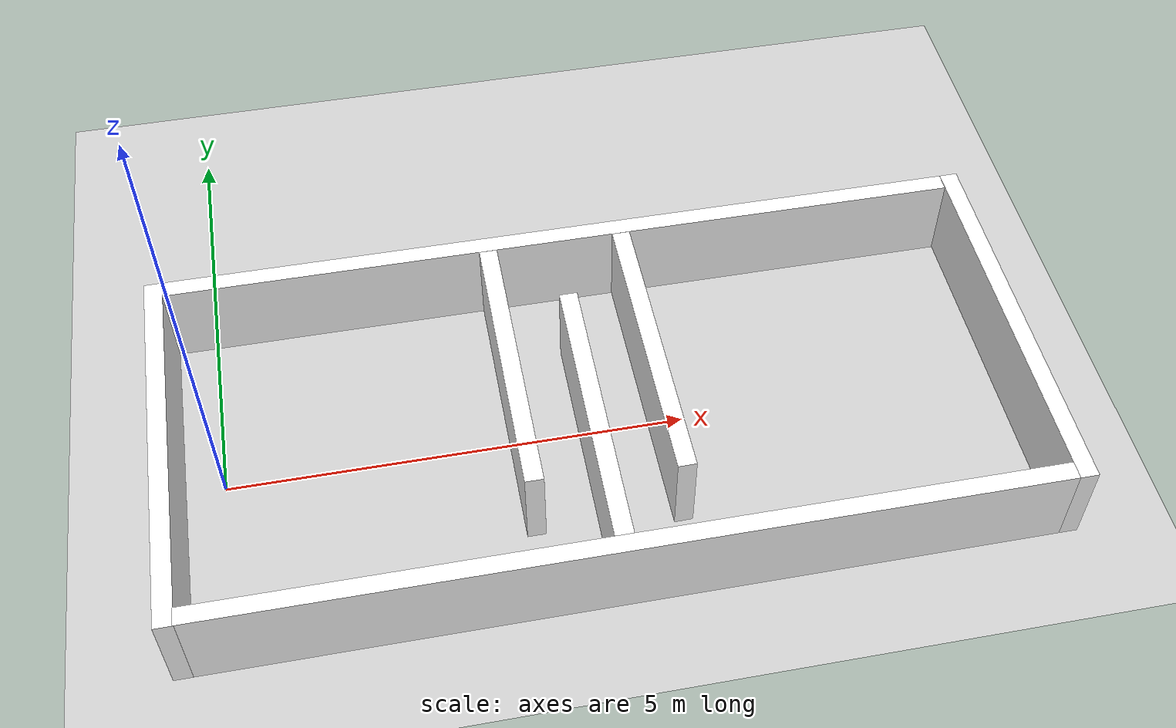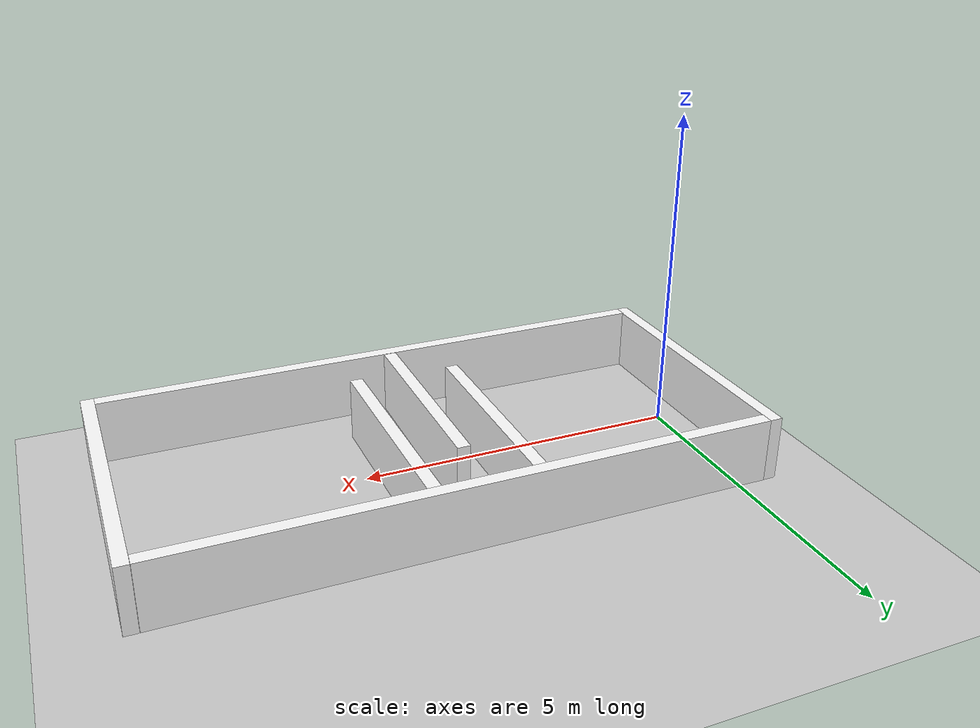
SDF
<sdf version="1.7">
 <world name="default">
  <scene><ambient>0.4 0.4 0.4 1</ambient><background>0.7 0.7 0.7 1</background><shadows>1</shadows></scene>
  <light name="sun" type="directional">
   <pose>0 0 10 0 -0 0</pose>
   <diffuse>0.8 0.8 0.8 1</diffuse>
   <specular>0.2 0.2 0.2 1</specular>
   <attenuation>
    <range>1000</range>
    <constant>0.9</constant>
    <linear>0.01</linear>
    <quadratic>0.001</quadratic>
   </attenuation>
   <direction>-0.5 0.1 -0.9</direction>
   <spot><inner_angle>0</inner_angle><outer_angle>0</outer_angle><falloff>0</falloff></spot>
  </light>
  <model name="ground_plane">
   <static>1</static>
   <link name="link">
    <collision name="collision">
     <geometry><plane><normal>0 0 1</normal><size>100 100</size></plane></geometry>
     <surface>
      <contact><collide_bitmask>65535</collide_bitmask></contact>
      <friction><ode><mu>100</mu><mu2>50</mu2></ode></friction>
     </surface>
    </collision>
    <visual name="visual">
     <cast_shadows>0</cast_shadows>
     <geometry><plane><normal>0 0 1</normal><size>100 100</size></plane></geometry>
     <material>
      <script><uri>file://media/materials/scripts/gazebo.material</uri><name>Gazebo/Grey</name></script>
     </material>
    </visual>
   </link>
  </model>
  <physics type="ode">
   <real_time_update_rate>1000</real_time_update_rate>
   <max_step_size>0.001</max_step_size>
   <real_time_factor>1</real_time_factor>
   <ode>
    <solver>
     <type>quick</type>
     <iters>150</iters>
     <precon_iters>0</precon_iters>
     <sor>1.4</sor>
     <use_dynamic_moi_rescaling>1</use_dynamic_moi_rescaling>
    </solver>
    <constraints>
     <cfm>1e-05</cfm>
     <erp>0.2</erp>
     <contact_max_correcting_vel>2000</contact_max_correcting_vel>
     <contact_surface_layer>0.01</contact_surface_layer>
    </constraints>
   </ode>
  </physics>
  <gravity>0 0 -9.8</gravity>
  <magnetic_field>6e-06 2.3e-05 -4.2e-05</magnetic_field>
  <atmosphere type="adiabatic"/>
  <spherical_coordinates>
   <surface_model>EARTH_WGS84</surface_model>
   <latitude_deg>0</latitude_deg>
   <longitude_deg>0</longitude_deg>
   <elevation>0</elevation>
   <heading_deg>0</heading_deg>
  </spherical_coordinates>
  <model name="brick_box_small_1">
   <link name="chassis">
    <pose>-0.5 0 1.5 0 -0 0</pose>
    <inertial>
     <mass>1</mass>
     <inertia><ixx>1</ixx><ixy>0</ixy><ixz>0</ixz><iyy>1</iyy><iyz>0</iyz><izz>1</izz></inertia>
    </inertial>
    <visual name="visual">
     <geometry>
      <mesh><uri>model://brick_box_3x1x3/meshes/simple_box.dae</uri><scale>9 0.2 1</scale></mesh>
     </geometry>
     <material>
      <script>
       <uri>model://brick_box_3x1x3/materials/scripts</uri>
       <uri>model://brick_box_3x1x3/materials/textures</uri>
       <name>BrickBox/Diffuse</name>
      </script>
      <shader type="pixel"><normal_map>__default__</normal_map></shader>
      <ambient>1 1 1 1</ambient>
      <diffuse>1 1 1 1</diffuse>
      <specular>0 0 0 1</specular>
      <emissive>0 0 0 1</emissive>
     </material>
    </visual>
    <collision name="collision">
     <geometry><box><size>9 0.2 1</size></box></geometry>
     <surface>
      <friction>
       <ode><mu>1</mu><mu2>1</mu2><fdir1>0 0 0</fdir1><slip1>0</slip1><slip2>0</slip2></ode>
       <torsional>
        <coefficient>1</coefficient>
        <patch_radius>0</patch_radius>
        <surface_radius>0</surface_radius>
        <use_patch_radius>1</use_patch_radius>
        <ode><slip>0</slip></ode>
       </torsional>
      </friction>
      <bounce><restitution_coefficient>0</restitution_coefficient><threshold>1e+06</threshold></bounce>
      <contact>
       <collide_without_contact>0</collide_without_contact>
       <collide_without_contact_bitmask>1</collide_without_contact_bitmask>
       <collide_bitmask>1</collide_bitmask>
       <ode>
        <soft_cfm>0</soft_cfm>
        <soft_erp>0.2</soft_erp>
        <kp>1e+13</kp>
        <kd>1</kd>
        <max_vel>0.01</max_vel>
        <min_depth>0</min_depth>
       </ode>
       <bullet>
        <split_impulse>1</split_impulse>
        <split_impulse_penetration_threshold>-0.01</split_impulse_penetration_threshold>
        <soft_cfm>0</soft_cfm>
        <soft_erp>0.2</soft_erp>
        <kp>1e+13</kp>
        <kd>1</kd>
       </bullet>
      </contact>
     </surface>
    </collision>
   </link>
   <static>1</static>
   <pose>4.56259 2.10449 -1.01189 0 -0 0</pose>
  </model>
  <model name="brick_box_small_2">
   <link name="chassis">
    <pose>-0.2 -0 1.5 0 -0 0</pose>
    <inertial>
     <mass>1</mass>
     <inertia><ixx>1</ixx><ixy>0</ixy><ixz>0</ixz><iyy>1</iyy><iyz>0</iyz><izz>1</izz></inertia>
    </inertial>
    <visual name="visual">
     <geometry>
      <mesh><uri>model://brick_box_3x1x3/meshes/simple_box.dae</uri><scale>4.4 0.2 1</scale></mesh>
     </geometry>
     <material>
      <script>
       <uri>model://brick_box_3x1x3/materials/scripts</uri>
       <uri>model://brick_box_3x1x3/materials/textures</uri>
       <name>BrickBox/Diffuse</name>
      </script>
      <shader type="pixel"><normal_map>__default__</normal_map></shader>
      <ambient>1 1 1 1</ambient>
      <diffuse>1 1 1 1</diffuse>
      <specular>0 0 0 1</specular>
      <emissive>0 0 0 1</emissive>
     </material>
    </visual>
    <collision name="collision">
     <geometry><box><size>4.4 0.2 1</size></box></geometry>
     <surface>
      <friction>
       <ode><mu>1</mu><mu2>1</mu2><fdir1>0 0 0</fdir1><slip1>0</slip1><slip2>0</slip2></ode>
       <torsional>
        <coefficient>1</coefficient>
        <patch_radius>0</patch_radius>
        <surface_radius>0</surface_radius>
        <use_patch_radius>1</use_patch_radius>
        <ode><slip>0</slip></ode>
       </torsional>
      </friction>
      <bounce><restitution_coefficient>0</restitution_coefficient><threshold>1e+06</threshold></bounce>
      <contact>
       <collide_without_contact>0</collide_without_contact>
       <collide_without_contact_bitmask>1</collide_without_contact_bitmask>
       <collide_bitmask>1</collide_bitmask>
       <ode>
        <soft_cfm>0</soft_cfm>
        <soft_erp>0.2</soft_erp>
        <kp>1e+13</kp>
        <kd>1</kd>
        <max_vel>0.01</max_vel>
        <min_depth>0</min_depth>
       </ode>
       <bullet>
        <split_impulse>1</split_impulse>
        <split_impulse_penetration_threshold>-0.01</split_impulse_penetration_threshold>
        <soft_cfm>0</soft_cfm>
        <soft_erp>0.2</soft_erp>
        <kp>1e+13</kp>
        <kd>1</kd>
       </bullet>
      </contact>
     </surface>
    </collision>
   </link>
   <static>1</static>
   <pose>-0.526831 0.202577 -1.01189 0 -0 1.57468</pose>
  </model>
  <model name="brick_box_small_1_0">
   <link name="chassis">
    <pose>-0.5 0 1.5 0 -0 0</pose>
    <inertial>
     <mass>1</mass>
     <inertia><ixx>1</ixx><ixy>0</ixy><ixz>0</ixz><iyy>1</iyy><iyz>0</iyz><izz>1</izz></inertia>
    </inertial>
    <visual name="visual">
     <geometry>
      <mesh><uri>model://brick_box_3x1x3/meshes/simple_box.dae</uri><scale>9 0.2 1</scale></mesh>
     </geometry>
     <material>
      <script>
       <uri>model://brick_box_3x1x3/materials/scripts</uri>
       <uri>model://brick_box_3x1x3/materials/textures</uri>
       <name>BrickBox/Diffuse</name>
      </script>
      <shader type="pixel"><normal_map>__default__</normal_map></shader>
      <ambient>1 1 1 1</ambient>
      <diffuse>1 1 1 1</diffuse>
      <specular>0 0 0 1</specular>
      <emissive>0 0 0 1</emissive>
     </material>
    </visual>
    <collision name="collision">
     <geometry><box><size>9 0.2 1</size></box></geometry>
     <surface>
      <friction>
       <ode><mu>1</mu><mu2>1</mu2><fdir1>0 0 0</fdir1><slip1>0</slip1><slip2>0</slip2></ode>
       <torsional>
        <coefficient>1</coefficient>
        <patch_radius>0</patch_radius>
        <surface_radius>0</surface_radius>
        <use_patch_radius>1</use_patch_radius>
        <ode><slip>0</slip></ode>
       </torsional>
      </friction>
      <bounce><restitution_coefficient>0</restitution_coefficient><threshold>1e+06</threshold></bounce>
      <contact>
       <collide_without_contact>0</collide_without_contact>
       <collide_without_contact_bitmask>1</collide_without_contact_bitmask>
       <collide_bitmask>1</collide_bitmask>
       <ode>
        <soft_cfm>0</soft_cfm>
        <soft_erp>0.2</soft_erp>
        <kp>1e+13</kp>
        <kd>1</kd>
        <max_vel>0.01</max_vel>
        <min_depth>0</min_depth>
       </ode>
       <bullet>
        <split_impulse>1</split_impulse>
        <split_impulse_penetration_threshold>-0.01</split_impulse_penetration_threshold>
        <soft_cfm>0</soft_cfm>
        <soft_erp>0.2</soft_erp>
        <kp>1e+13</kp>
        <kd>1</kd>
       </bullet>
      </contact>
     </surface>
    </collision>
   </link>
   <static>1</static>
   <pose>4.56897 -2.09602 -1.01087 0 -0 0</pose>
  </model>
  <model name="brick_box_small_2_clone">
   <link name="chassis">
    <pose>-0.2 -0 1.5 0 -0 0</pose>
    <inertial>
     <mass>1</mass>
     <inertia><ixx>1</ixx><ixy>0</ixy><ixz>0</ixz><iyy>1</iyy><iyz>0</iyz><izz>1</izz></inertia>
    </inertial>
    <visual name="visual">
     <geometry>
      <mesh><uri>model://brick_box_3x1x3/meshes/simple_box.dae</uri><scale>4.4 0.2 1</scale></mesh>
     </geometry>
     <material>
      <script>
       <uri>model://brick_box_3x1x3/materials/scripts</uri>
       <uri>model://brick_box_3x1x3/materials/textures</uri>
       <name>BrickBox/Diffuse</name>
      </script>
      <shader type="pixel"><normal_map>__default__</normal_map></shader>
      <ambient>1 1 1 1</ambient>
      <diffuse>1 1 1 1</diffuse>
      <specular>0 0 0 1</specular>
      <emissive>0 0 0 1</emissive>
     </material>
    </visual>
    <collision name="collision">
     <geometry><box><size>4.4 0.2 1</size></box></geometry>
     <surface>
      <friction>
       <ode><mu>1</mu><mu2>1</mu2><fdir1>0 0 0</fdir1><slip1>0</slip1><slip2>0</slip2></ode>
       <torsional>
        <coefficient>1</coefficient>
        <patch_radius>0</patch_radius>
        <surface_radius>0</surface_radius>
        <use_patch_radius>1</use_patch_radius>
        <ode><slip>0</slip></ode>
       </torsional>
      </friction>
      <bounce><restitution_coefficient>0</restitution_coefficient><threshold>1e+06</threshold></bounce>
      <contact>
       <collide_without_contact>0</collide_without_contact>
       <collide_without_contact_bitmask>1</collide_without_contact_bitmask>
       <collide_bitmask>1</collide_bitmask>
       <ode>
        <soft_cfm>0</soft_cfm>
        <soft_erp>0.2</soft_erp>
        <kp>1e+13</kp>
        <kd>1</kd>
        <max_vel>0.01</max_vel>
        <min_depth>0</min_depth>
       </ode>
       <bullet>
        <split_impulse>1</split_impulse>
        <split_impulse_penetration_threshold>-0.01</split_impulse_penetration_threshold>
        <soft_cfm>0</soft_cfm>
        <soft_erp>0.2</soft_erp>
        <kp>1e+13</kp>
        <kd>1</kd>
       </bullet>
      </contact>
     </surface>
    </collision>
   </link>
   <static>1</static>
   <pose>8.66738 0.204319 -1.01189 0 -0 1.57152</pose>
  </model>
  <model name="brick_box_small_3">
   <link name="chassis">
    <pose>0 0 0.5 0 0 -1.57079</pose>
    <inertial>
     <mass>1</mass>
     <inertia><ixx>1</ixx><ixy>0</ixy><ixz>0</ixz><iyy>1</iyy><iyz>0</iyz><izz>1</izz></inertia>
    </inertial>
    <visual name="visual">
     <geometry>
      <mesh><uri>model://brick_box_3x1x3/meshes/simple_box.dae</uri><scale>3.4 0.2 1</scale></mesh>
     </geometry>
     <material>
      <script>
       <uri>model://brick_box_3x1x3/materials/scripts</uri>
       <uri>model://brick_box_3x1x3/materials/textures</uri>
       <name>BrickBox/Diffuse</name>
      </script>
      <shader type="pixel"><normal_map>__default__</normal_map></shader>
      <ambient>1 1 1 1</ambient>
      <diffuse>1 1 1 1</diffuse>
      <specular>0 0 0 1</specular>
      <emissive>0 0 0 1</emissive>
     </material>
    </visual>
    <collision name="collision">
     <geometry><box><size>3.4 0.2 1</size></box></geometry>
     <surface>
      <friction>
       <ode><mu>1</mu><mu2>1</mu2><fdir1>0 0 0</fdir1><slip1>0</slip1><slip2>0</slip2></ode>
       <torsional>
        <coefficient>1</coefficient>
        <patch_radius>0</patch_radius>
        <surface_radius>0</surface_radius>
        <use_patch_radius>1</use_patch_radius>
        <ode><slip>0</slip></ode>
       </torsional>
      </friction>
      <bounce><restitution_coefficient>0</restitution_coefficient><threshold>1e+06</threshold></bounce>
      <contact>
       <collide_without_contact>0</collide_without_contact>
       <collide_without_contact_bitmask>1</collide_without_contact_bitmask>
       <collide_bitmask>1</collide_bitmask>
       <ode>
        <soft_cfm>0</soft_cfm>
        <soft_erp>0.2</soft_erp>
        <kp>1e+13</kp>
        <kd>1</kd>
        <max_vel>0.01</max_vel>
        <min_depth>0</min_depth>
       </ode>
       <bullet>
        <split_impulse>1</split_impulse>
        <split_impulse_penetration_threshold>-0.01</split_impulse_penetration_threshold>
        <soft_cfm>0</soft_cfm>
        <soft_erp>0.2</soft_erp>
        <kp>1e+13</kp>
        <kd>1</kd>
       </bullet>
      </contact>
     </surface>
    </collision>
   </link>
   <static>1</static>
   <pose>3.1793 0.503235 -0.013215 0 0 -0.00138</pose>
  </model>
  <model name="brick_box_small_3_clone">
   <link name="chassis">
    <pose>0 0 0.5 0 0 -1.57079</pose>
    <inertial>
     <mass>1</mass>
     <inertia><ixx>1</ixx><ixy>0</ixy><ixz>0</ixz><iyy>1</iyy><iyz>0</iyz><izz>1</izz></inertia>
    </inertial>
    <visual name="visual">
     <geometry>
      <mesh><uri>model://brick_box_3x1x3/meshes/simple_box.dae</uri><scale>3.4 0.2 1</scale></mesh>
     </geometry>
     <material>
      <script>
       <uri>model://brick_box_3x1x3/materials/scripts</uri>
       <uri>model://brick_box_3x1x3/materials/textures</uri>
       <name>BrickBox/Diffuse</name>
      </script>
      <shader type="pixel"><normal_map>__default__</normal_map></shader>
      <ambient>1 1 1 1</ambient>
      <diffuse>1 1 1 1</diffuse>
      <specular>0 0 0 1</specular>
      <emissive>0 0 0 1</emissive>
     </material>
    </visual>
    <collision name="collision">
     <geometry><box><size>3.4 0.2 1</size></box></geometry>
     <surface>
      <friction>
       <ode><mu>1</mu><mu2>1</mu2><fdir1>0 0 0</fdir1><slip1>0</slip1><slip2>0</slip2></ode>
       <torsional>
        <coefficient>1</coefficient>
        <patch_radius>0</patch_radius>
        <surface_radius>0</surface_radius>
        <use_patch_radius>1</use_patch_radius>
        <ode><slip>0</slip></ode>
       </torsional>
      </friction>
      <bounce><restitution_coefficient>0</restitution_coefficient><threshold>1e+06</threshold></bounce>
      <contact>
       <collide_without_contact>0</collide_without_contact>
       <collide_without_contact_bitmask>1</collide_without_contact_bitmask>
       <collide_bitmask>1</collide_bitmask>
       <ode>
        <soft_cfm>0</soft_cfm>
        <soft_erp>0.2</soft_erp>
        <kp>1e+13</kp>
        <kd>1</kd>
        <max_vel>0.01</max_vel>
        <min_depth>0</min_depth>
       </ode>
       <bullet>
        <split_impulse>1</split_impulse>
        <split_impulse_penetration_threshold>-0.01</split_impulse_penetration_threshold>
        <soft_cfm>0</soft_cfm>
        <soft_erp>0.2</soft_erp>
        <kp>1e+13</kp>
        <kd>1</kd>
       </bullet>
      </contact>
     </surface>
    </collision>
   </link>
   <static>1</static>
   <pose>4.7168 0.397851 -0.013215 0 -0 0.00718</pose>
  </model>
  <model name="brick_box_small_3_clone_0">
   <link name="chassis">
    <pose>0 0 0.5 0 0 -1.57079</pose>
    <inertial>
     <mass>1</mass>
     <inertia><ixx>1</ixx><ixy>0</ixy><ixz>0</ixz><iyy>1</iyy><iyz>0</iyz><izz>1</izz></inertia>
    </inertial>
    <visual name="visual">
     <geometry>
      <mesh><uri>model://brick_box_3x1x3/meshes/simple_box.dae</uri><scale>3.4 0.2 1</scale></mesh>
     </geometry>
     <material>
      <script>
       <uri>model://brick_box_3x1x3/materials/scripts</uri>
       <uri>model://brick_box_3x1x3/materials/textures</uri>
       <name>BrickBox/Diffuse</name>
      </script>
      <shader type="pixel"><normal_map>__default__</normal_map></shader>
      <ambient>1 1 1 1</ambient>
      <diffuse>1 1 1 1</diffuse>
      <specular>0 0 0 1</specular>
      <emissive>0 0 0 1</emissive>
     </material>
    </visual>
    <collision name="collision">
     <geometry><box><size>3.4 0.2 1</size></box></geometry>
     <surface>
      <friction>
       <ode><mu>1</mu><mu2>1</mu2><fdir1>0 0 0</fdir1><slip1>0</slip1><slip2>0</slip2></ode>
       <torsional>
        <coefficient>1</coefficient>
        <patch_radius>0</patch_radius>
        <surface_radius>0</surface_radius>
        <use_patch_radius>1</use_patch_radius>
        <ode><slip>0</slip></ode>
       </torsional>
      </friction>
      <bounce><restitution_coefficient>0</restitution_coefficient><threshold>1e+06</threshold></bounce>
      <contact>
       <collide_without_contact>0</collide_without_contact>
       <collide_without_contact_bitmask>1</collide_without_contact_bitmask>
       <collide_bitmask>1</collide_bitmask>
       <ode>
        <soft_cfm>0</soft_cfm>
        <soft_erp>0.2</soft_erp>
        <kp>1e+13</kp>
        <kd>1</kd>
        <max_vel>0.01</max_vel>
        <min_depth>0</min_depth>
       </ode>
       <bullet>
        <split_impulse>1</split_impulse>
        <split_impulse_penetration_threshold>-0.01</split_impulse_penetration_threshold>
        <soft_cfm>0</soft_cfm>
        <soft_erp>0.2</soft_erp>
        <kp>1e+13</kp>
        <kd>1</kd>
       </bullet>
      </contact>
     </surface>
    </collision>
   </link>
   <static>1</static>
   <pose>3.94581 -0.49379 -0.015735 0 0 -0.00483</pose>
  </model>
 </world>
</sdf>
